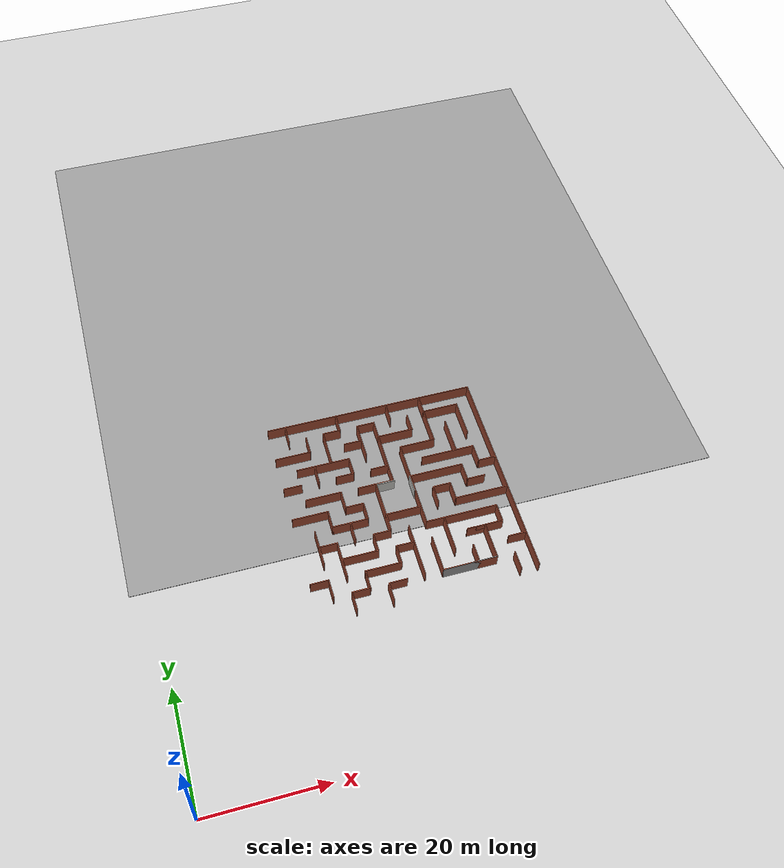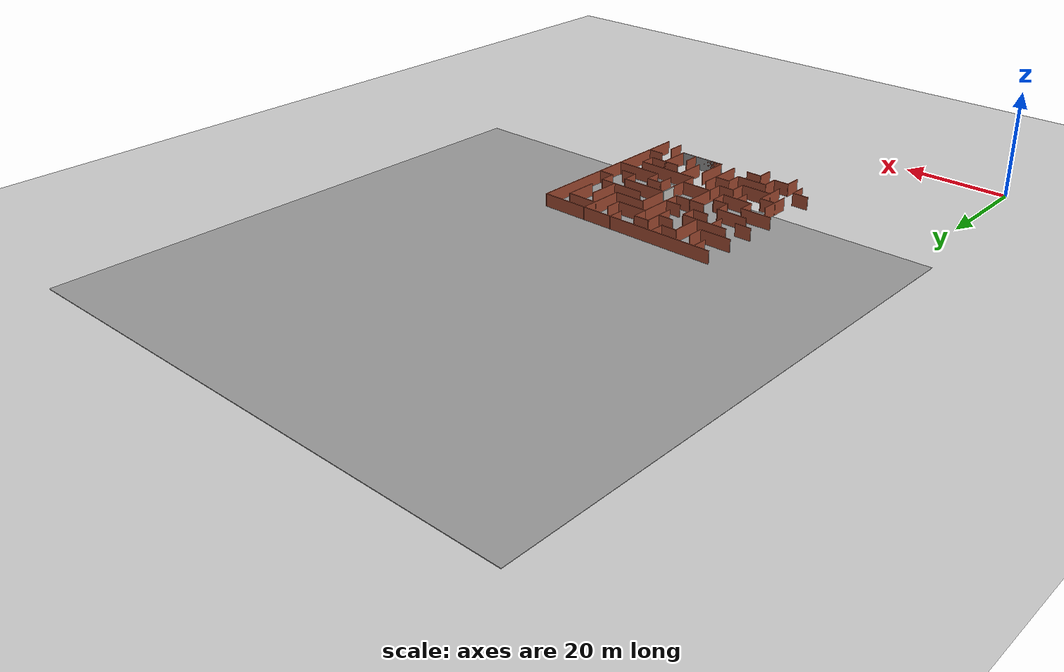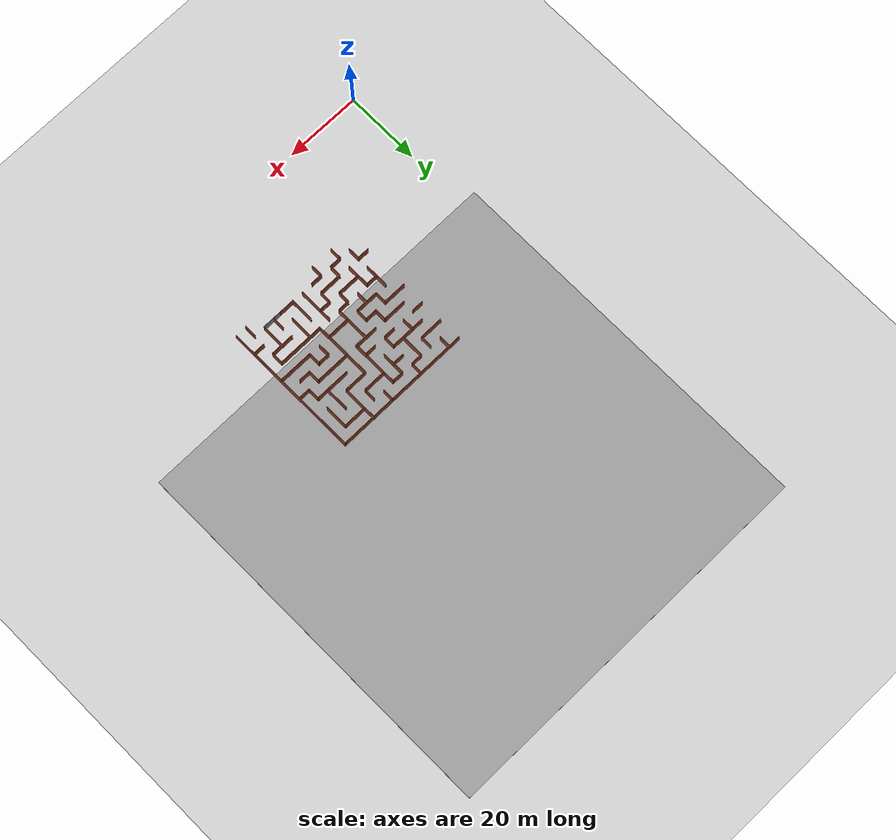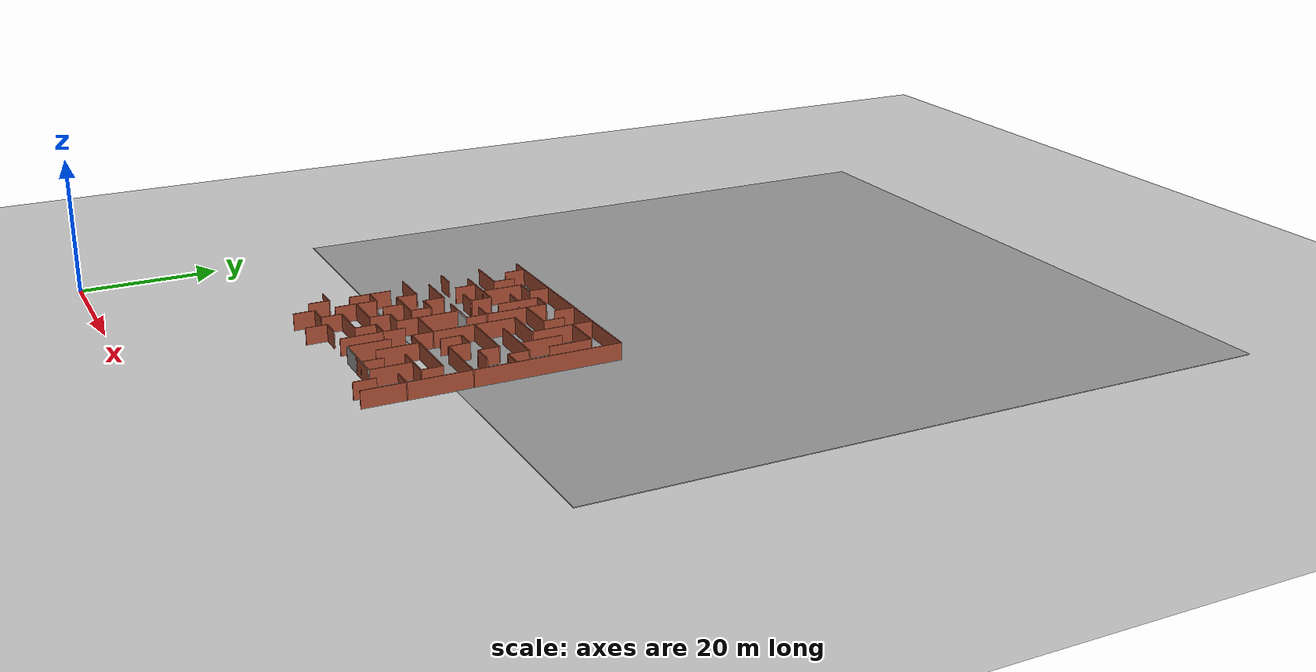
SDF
<sdf version="1.6">
 <world name="default">
  <model name="ground_plane">
   <static>1</static>
   <link name="link">
    <collision name="collision">
     <geometry><plane><normal>0 0 1</normal><size>100 100</size></plane></geometry>
     <surface><friction><ode><mu>100</mu><mu2>50</mu2></ode></friction></surface>
    </collision>
    <visual name="visual">
     <cast_shadows>0</cast_shadows>
     <geometry><plane><normal>0 0 1</normal><size>100 100</size></plane></geometry>
     <material>
      <script><uri>file://media/materials/scripts/gazebo.material</uri><name>Gazebo/Grey</name></script>
     </material>
    </visual>
   </link>
  </model>
  <model name="maze_final_2_0">
   <pose>42 42 0 0 -0 0</pose>
   <link name="Wall_10">
    <collision name="Wall_10_Collision">
     <geometry><box><size>3.15 0.15 2.5</size></box></geometry>
     <pose>0 0 1.25 0 -0 0</pose>
    </collision>
    <visual name="Wall_10_Visual">
     <pose>0 0 1.25 0 -0 0</pose>
     <geometry><box><size>3.15 0.15 2.5</size></box></geometry>
     <material>
      <script><uri>file://media/materials/scripts/gazebo.material</uri><name>Gazebo/Bricks</name></script>
      <ambient>1 1 1 1</ambient>
     </material>
    </visual>
    <pose>-16.5 -12 0 0 -0 0</pose>
   </link>
   <link name="Wall_100">
    <collision name="Wall_100_Collision">
     <geometry><box><size>3.15 0.15 2.5</size></box></geometry>
     <pose>0 0 1.25 0 -0 0</pose>
    </collision>
    <visual name="Wall_100_Visual">
     <pose>0 0 1.25 0 -0 0</pose>
     <geometry><box><size>3.15 0.15 2.5</size></box></geometry>
     <material>
      <script><uri>file://media/materials/scripts/gazebo.material</uri><name>Gazebo/Bricks</name></script>
      <ambient>1 1 1 1</ambient>
     </material>
    </visual>
    <pose>-4.5 12 0 0 -0 3.14159</pose>
   </link>
   <link name="Wall_102">
    <collision name="Wall_102_Collision">
     <geometry><box><size>9.15 0.15 2.5</size></box></geometry>
     <pose>0 0 1.25 0 -0 0</pose>
    </collision>
    <visual name="Wall_102_Visual">
     <pose>0 0 1.25 0 -0 0</pose>
     <geometry><box><size>9.15 0.15 2.5</size></box></geometry>
     <material>
      <script><uri>file://media/materials/scripts/gazebo.material</uri><name>Gazebo/Bricks</name></script>
      <ambient>1 1 1 1</ambient>
     </material>
    </visual>
    <pose>-0.0065 7.5 0 0 0 -1.57224</pose>
   </link>
   <link name="Wall_103">
    <collision name="Wall_103_Collision">
     <geometry><box><size>6.137 0.15 2.5</size></box></geometry>
     <pose>0 0 1.25 0 -0 0</pose>
    </collision>
    <visual name="Wall_103_Visual">
     <pose>0 0 1.25 0 -0 0</pose>
     <geometry><box><size>6.137 0.15 2.5</size></box></geometry>
     <material>
      <script><uri>file://media/materials/scripts/gazebo.material</uri><name>Gazebo/Bricks</name></script>
      <ambient>1 1 1 1</ambient>
     </material>
    </visual>
    <pose>-3.0065 3 0 0 -0 3.14159</pose>
   </link>
   <link name="Wall_105">
    <collision name="Wall_105_Collision">
     <geometry><box><size>3.15 0.15 2.5</size></box></geometry>
     <pose>0 0 1.25 0 -0 0</pose>
    </collision>
    <visual name="Wall_105_Visual">
     <pose>0 0 1.25 0 -0 0</pose>
     <geometry><box><size>3.15 0.15 2.5</size></box></geometry>
     <material>
      <script><uri>file://media/materials/scripts/gazebo.material</uri><name>Gazebo/Bricks</name></script>
      <ambient>1 1 1 1</ambient>
     </material>
    </visual>
    <pose>-1.5 6 0 0 -0 3.14159</pose>
   </link>
   <link name="Wall_108">
    <collision name="Wall_108_Collision">
     <geometry><box><size>6.15 0.15 2.5</size></box></geometry>
     <pose>0 0 1.25 0 -0 0</pose>
    </collision>
    <visual name="Wall_108_Visual">
     <pose>0 0 1.25 0 -0 0</pose>
     <geometry><box><size>6.15 0.15 2.5</size></box></geometry>
     <material>
      <script><uri>file://media/materials/scripts/gazebo.material</uri><name>Gazebo/Bricks</name></script>
      <ambient>1 1 1 1</ambient>
     </material>
    </visual>
    <pose>1e-06 -3 0 0 -0 3.14159</pose>
   </link>
   <link name="Wall_110">
    <collision name="Wall_110_Collision">
     <geometry><box><size>9.15 0.15 2.5</size></box></geometry>
     <pose>0 0 1.25 0 -0 0</pose>
    </collision>
    <visual name="Wall_110_Visual">
     <pose>0 0 1.25 0 -0 0</pose>
     <geometry><box><size>9.15 0.15 2.5</size></box></geometry>
     <material>
      <script><uri>file://media/materials/scripts/gazebo.material</uri><name>Gazebo/Bricks</name></script>
      <ambient>1 1 1 1</ambient>
     </material>
    </visual>
    <pose>-3 -1.5 0 0 -0 1.5708</pose>
   </link>
   <link name="Wall_112">
    <collision name="Wall_112_Collision">
     <geometry><box><size>3.15 0.15 2.5</size></box></geometry>
     <pose>0 0 1.25 0 -0 0</pose>
    </collision>
    <visual name="Wall_112_Visual">
     <pose>0 0 1.25 0 -0 0</pose>
     <geometry><box><size>3.15 0.15 2.5</size></box></geometry>
     <material>
      <script><uri>file://media/materials/scripts/gazebo.material</uri><name>Gazebo/Bricks</name></script>
      <ambient>1 1 1 1</ambient>
     </material>
    </visual>
    <pose>-4.5 -6 0 0 -0 3.14159</pose>
   </link>
   <link name="Wall_113">
    <collision name="Wall_113_Collision">
     <geometry><box><size>3.15 0.15 2.5</size></box></geometry>
     <pose>0 0 1.25 0 -0 0</pose>
    </collision>
    <visual name="Wall_113_Visual">
     <pose>0 0 1.25 0 -0 0</pose>
     <geometry><box><size>3.15 0.15 2.5</size></box></geometry>
     <material>
      <script><uri>file://media/materials/scripts/gazebo.material</uri><name>Gazebo/Bricks</name></script>
      <ambient>1 1 1 1</ambient>
     </material>
    </visual>
    <pose>-6 -7.5 0 0 0 -1.5708</pose>
   </link>
   <link name="Wall_114">
    <collision name="Wall_114_Collision">
     <geometry><box><size>6.15 0.15 2.5</size></box></geometry>
     <pose>0 0 1.25 0 -0 0</pose>
    </collision>
    <visual name="Wall_114_Visual">
     <pose>0 0 1.25 0 -0 0</pose>
     <geometry><box><size>6.15 0.15 2.5</size></box></geometry>
     <material>
      <script><uri>file://media/materials/scripts/gazebo.material</uri><name>Gazebo/Bricks</name></script>
      <ambient>1 1 1 1</ambient>
     </material>
    </visual>
    <pose>-9 -9 0 0 -0 3.14159</pose>
   </link>
   <link name="Wall_116">
    <collision name="Wall_116_Collision">
     <geometry><box><size>6.15 0.15 2.5</size></box></geometry>
     <pose>0 0 1.25 0 -0 0</pose>
    </collision>
    <visual name="Wall_116_Visual">
     <pose>0 0 1.25 0 -0 0</pose>
     <geometry><box><size>6.15 0.15 2.5</size></box></geometry>
     <material>
      <script><uri>file://media/materials/scripts/gazebo.material</uri><name>Gazebo/Bricks</name></script>
      <ambient>1 1 1 1</ambient>
     </material>
    </visual>
    <pose>-12 -9 0 0 -0 1.5708</pose>
   </link>
   <link name="Wall_117">
    <collision name="Wall_117_Collision">
     <geometry><box><size>3.15 0.15 2.5</size></box></geometry>
     <pose>0 0 1.25 0 -0 0</pose>
    </collision>
    <visual name="Wall_117_Visual">
     <pose>0 0 1.25 0 -0 0</pose>
     <geometry><box><size>3.15 0.15 2.5</size></box></geometry>
     <material>
      <script><uri>file://media/materials/scripts/gazebo.material</uri><name>Gazebo/Bricks</name></script>
      <ambient>1 1 1 1</ambient>
     </material>
    </visual>
    <pose>-13.5 -6 0 0 -0 3.14159</pose>
   </link>
   <link name="Wall_119">
    <collision name="Wall_119_Collision">
     <geometry><box><size>6.15 0.15 2.5</size></box></geometry>
     <pose>0 0 1.25 0 -0 0</pose>
    </collision>
    <visual name="Wall_119_Visual">
     <pose>0 0 1.25 0 -0 0</pose>
     <geometry><box><size>6.15 0.15 2.5</size></box></geometry>
     <material>
      <script><uri>file://media/materials/scripts/gazebo.material</uri><name>Gazebo/Bricks</name></script>
      <ambient>1 1 1 1</ambient>
     </material>
    </visual>
    <pose>-15 -6 0 0 0 -1.5708</pose>
   </link>
   <link name="Wall_12">
    <collision name="Wall_12_Collision">
     <geometry><box><size>6.15 0.15 2.5</size></box></geometry>
     <pose>0 0 1.25 0 -0 0</pose>
    </collision>
    <visual name="Wall_12_Visual">
     <pose>0 0 1.25 0 -0 0</pose>
     <geometry><box><size>6.15 0.15 2.5</size></box></geometry>
     <material>
      <script><uri>file://media/materials/scripts/gazebo.material</uri><name>Gazebo/Bricks</name></script>
      <ambient>1 1 1 1</ambient>
     </material>
    </visual>
    <pose>-15 -1e-06 0 0 -0 0</pose>
   </link>
   <link name="Wall_121">
    <collision name="Wall_121_Collision">
     <geometry><box><size>3.13703 0.15 2.5</size></box></geometry>
     <pose>0 0 1.25 0 -0 0</pose>
    </collision>
    <visual name="Wall_121_Visual">
     <pose>0 0 1.25 0 -0 0</pose>
     <geometry><box><size>3.13703 0.15 2.5</size></box></geometry>
     <material>
      <script><uri>file://media/materials/scripts/gazebo.material</uri><name>Gazebo/Bricks</name></script>
      <ambient>1 1 1 1</ambient>
     </material>
    </visual>
    <pose>-12.0065 -1.4935 0 0 0 -1.57515</pose>
   </link>
   <link name="Wall_122">
    <collision name="Wall_122_Collision">
     <geometry><box><size>6.16301 0.15 2.5</size></box></geometry>
     <pose>0 0 1.25 0 -0 0</pose>
    </collision>
    <visual name="Wall_122_Visual">
     <pose>0 0 1.25 0 -0 0</pose>
     <geometry><box><size>6.16301 0.15 2.5</size></box></geometry>
     <material>
      <script><uri>file://media/materials/scripts/gazebo.material</uri><name>Gazebo/Bricks</name></script>
      <ambient>1 1 1 1</ambient>
     </material>
    </visual>
    <pose>-9.0065 -2.9935 0 0 0 -0.002162</pose>
   </link>
   <link name="Wall_123">
    <collision name="Wall_123_Collision">
     <geometry><box><size>3.15 0.15 2.5</size></box></geometry>
     <pose>0 0 1.25 0 -0 0</pose>
    </collision>
    <visual name="Wall_123_Visual">
     <pose>0 0 1.25 0 -0 0</pose>
     <geometry><box><size>3.15 0.15 2.5</size></box></geometry>
     <material>
      <script><uri>file://media/materials/scripts/gazebo.material</uri><name>Gazebo/Bricks</name></script>
      <ambient>1 1 1 1</ambient>
     </material>
    </visual>
    <pose>-6 -1.5 0 0 -0 1.5708</pose>
   </link>
   <link name="Wall_124">
    <collision name="Wall_124_Collision">
     <geometry><box><size>3.15 0.15 2.5</size></box></geometry>
     <pose>0 0 1.25 0 -0 0</pose>
    </collision>
    <visual name="Wall_124_Visual">
     <pose>0 0 1.25 0 -0 0</pose>
     <geometry><box><size>3.15 0.15 2.5</size></box></geometry>
     <material>
      <script><uri>file://media/materials/scripts/gazebo.material</uri><name>Gazebo/Bricks</name></script>
      <ambient>1 1 1 1</ambient>
     </material>
    </visual>
    <pose>-7.5 -1e-06 0 0 -0 3.14159</pose>
   </link>
   <link name="Wall_125">
    <collision name="Wall_125_Collision">
     <geometry><box><size>3.15 0.15 2.5</size></box></geometry>
     <pose>0 0 1.25 0 -0 0</pose>
    </collision>
    <visual name="Wall_125_Visual">
     <pose>0 0 1.25 0 -0 0</pose>
     <geometry><box><size>3.15 0.15 2.5</size></box></geometry>
     <material>
      <script><uri>file://media/materials/scripts/gazebo.material</uri><name>Gazebo/Bricks</name></script>
      <ambient>1 1 1 1</ambient>
     </material>
    </visual>
    <pose>-9 1.5 0 0 -0 1.5708</pose>
   </link>
   <link name="Wall_127">
    <collision name="Wall_127_Collision">
     <geometry><box><size>6.15 0.15 2.5</size></box></geometry>
     <pose>0 0 1.25 0 -0 0</pose>
    </collision>
    <visual name="Wall_127_Visual">
     <pose>0 0 1.25 0 -0 0</pose>
     <geometry><box><size>6.15 0.15 2.5</size></box></geometry>
     <material>
      <script><uri>file://media/materials/scripts/gazebo.material</uri><name>Gazebo/Bricks</name></script>
      <ambient>1 1 1 1</ambient>
     </material>
    </visual>
    <pose>-12 3 0 0 -0 3.14159</pose>
   </link>
   <link name="Wall_129">
    <collision name="Wall_129_Collision">
     <geometry><box><size>3.15 0.15 2.5</size></box></geometry>
     <pose>0 0 1.25 0 -0 0</pose>
    </collision>
    <visual name="Wall_129_Visual">
     <pose>0 0 1.25 0 -0 0</pose>
     <geometry><box><size>3.15 0.15 2.5</size></box></geometry>
     <material>
      <script><uri>file://media/materials/scripts/gazebo.material</uri><name>Gazebo/Bricks</name></script>
      <ambient>1 1 1 1</ambient>
     </material>
    </visual>
    <pose>-9 -4.5 0 0 0 -1.5708</pose>
   </link>
   <link name="Wall_131">
    <collision name="Wall_131_Collision">
     <geometry><box><size>3.15 0.15 2.5</size></box></geometry>
     <pose>0 0 1.25 0 -0 0</pose>
    </collision>
    <visual name="Wall_131_Visual">
     <pose>0 0 1.25 0 -0 0</pose>
     <geometry><box><size>3.15 0.15 2.5</size></box></geometry>
     <material>
      <script><uri>file://media/materials/scripts/gazebo.material</uri><name>Gazebo/Bricks</name></script>
      <ambient>1 1 1 1</ambient>
     </material>
    </visual>
    <pose>-6 16.5 0 0 0 -1.5708</pose>
   </link>
   <link name="Wall_132">
    <collision name="Wall_132_Collision">
     <geometry><box><size>3.15 0.15 2.5</size></box></geometry>
     <pose>0 0 1.25 0 -0 0</pose>
    </collision>
    <visual name="Wall_132_Visual">
     <pose>0 0 1.25 0 -0 0</pose>
     <geometry><box><size>3.15 0.15 2.5</size></box></geometry>
     <material>
      <script><uri>file://media/materials/scripts/gazebo.material</uri><name>Gazebo/Bricks</name></script>
      <ambient>1 1 1 1</ambient>
     </material>
    </visual>
    <pose>-7.5 15 0 0 -0 3.14159</pose>
   </link>
   <link name="Wall_133">
    <collision name="Wall_133_Collision">
     <geometry><box><size>6.15 0.15 2.5</size></box></geometry>
     <pose>0 0 1.25 0 -0 0</pose>
    </collision>
    <visual name="Wall_133_Visual">
     <pose>0 0 1.25 0 -0 0</pose>
     <geometry><box><size>6.15 0.15 2.5</size></box></geometry>
     <material>
      <script><uri>file://media/materials/scripts/gazebo.material</uri><name>Gazebo/Bricks</name></script>
      <ambient>1 1 1 1</ambient>
     </material>
    </visual>
    <pose>-9 12 0 0 0 -1.5708</pose>
   </link>
   <link name="Wall_135">
    <collision name="Wall_135_Collision">
     <geometry><box><size>3.15 0.15 2.5</size></box></geometry>
     <pose>0 0 1.25 0 -0 0</pose>
    </collision>
    <visual name="Wall_135_Visual">
     <pose>0 0 1.25 0 -0 0</pose>
     <geometry><box><size>3.15 0.15 2.5</size></box></geometry>
     <material>
      <script><uri>file://media/materials/scripts/gazebo.material</uri><name>Gazebo/Bricks</name></script>
      <ambient>1 1 1 1</ambient>
     </material>
    </visual>
    <pose>-7.5 6 0 0 -0 0</pose>
   </link>
   <link name="Wall_136">
    <collision name="Wall_136_Collision">
     <geometry><box><size>3.15 0.15 2.5</size></box></geometry>
     <pose>0 0 1.25 0 -0 0</pose>
    </collision>
    <visual name="Wall_136_Visual">
     <pose>0 0 1.25 0 -0 0</pose>
     <geometry><box><size>3.15 0.15 2.5</size></box></geometry>
     <material>
      <script><uri>file://media/materials/scripts/gazebo.material</uri><name>Gazebo/Bricks</name></script>
      <ambient>1 1 1 1</ambient>
     </material>
    </visual>
    <pose>-6 7.5 0 0 -0 1.5708</pose>
   </link>
   <link name="Wall_137">
    <collision name="Wall_137_Collision">
     <geometry><box><size>9.15 0.15 2.5</size></box></geometry>
     <pose>0 0 1.25 0 -0 0</pose>
    </collision>
    <visual name="Wall_137_Visual">
     <pose>0 0 1.25 0 -0 0</pose>
     <geometry><box><size>9.15 0.15 2.5</size></box></geometry>
     <material>
      <script><uri>file://media/materials/scripts/gazebo.material</uri><name>Gazebo/Bricks</name></script>
      <ambient>1 1 1 1</ambient>
     </material>
    </visual>
    <pose>-10.5 9 0 0 -0 3.14159</pose>
   </link>
   <link name="Wall_139">
    <collision name="Wall_139_Collision">
     <geometry><box><size>3.15 0.15 2.5</size></box></geometry>
     <pose>0 0 1.25 0 -0 0</pose>
    </collision>
    <visual name="Wall_139_Visual">
     <pose>0 0 1.25 0 -0 0</pose>
     <geometry><box><size>3.15 0.15 2.5</size></box></geometry>
     <material>
      <script><uri>file://media/materials/scripts/gazebo.material</uri><name>Gazebo/Bricks</name></script>
      <ambient>1 1 1 1</ambient>
     </material>
    </visual>
    <pose>-12 7.5 0 0 0 -1.5708</pose>
   </link>
   <link name="Wall_14">
    <collision name="Wall_14_Collision">
     <geometry><box><size>3.15 0.15 2.5</size></box></geometry>
     <pose>0 0 1.25 0 -0 0</pose>
    </collision>
    <visual name="Wall_14_Visual">
     <pose>0 0 1.25 0 -0 0</pose>
     <geometry><box><size>3.15 0.15 2.5</size></box></geometry>
     <material>
      <script><uri>file://media/materials/scripts/gazebo.material</uri><name>Gazebo/Bricks</name></script>
      <ambient>1 1 1 1</ambient>
     </material>
    </visual>
    <pose>-16.5 6 0 0 -0 0</pose>
   </link>
   <link name="Wall_141">
    <collision name="Wall_141_Collision">
     <geometry><box><size>3.15 0.15 2.5</size></box></geometry>
     <pose>0 0 1.25 0 -0 0</pose>
    </collision>
    <visual name="Wall_141_Visual">
     <pose>0 0 1.25 0 -0 0</pose>
     <geometry><box><size>3.15 0.15 2.5</size></box></geometry>
     <material>
      <script><uri>file://media/materials/scripts/gazebo.material</uri><name>Gazebo/Bricks</name></script>
      <ambient>1 1 1 1</ambient>
     </material>
    </visual>
    <pose>-15 16.5 0 0 -0 1.5708</pose>
   </link>
   <link name="Wall_143">
    <collision name="Wall_143_Collision">
     <geometry><box><size>3.15 0.15 2.5</size></box></geometry>
     <pose>0 0 1.25 0 -0 0</pose>
    </collision>
    <visual name="Wall_143_Visual">
     <pose>0 0 1.25 0 -0 0</pose>
     <geometry><box><size>3.15 0.15 2.5</size></box></geometry>
     <material>
      <script><uri>file://media/materials/scripts/gazebo.material</uri><name>Gazebo/Bricks</name></script>
      <ambient>1 1 1 1</ambient>
     </material>
    </visual>
    <pose>-12 13.5 0 0 -0 1.5708</pose>
   </link>
   <link name="Wall_16">
    <collision name="Wall_16_Collision">
     <geometry><box><size>6.15 0.15 2.5</size></box></geometry>
     <pose>0 0 1.25 0 -0 0</pose>
    </collision>
    <visual name="Wall_16_Visual">
     <pose>0 0 1.25 0 -0 0</pose>
     <geometry><box><size>6.15 0.15 2.5</size></box></geometry>
     <material>
      <script><uri>file://media/materials/scripts/gazebo.material</uri><name>Gazebo/Bricks</name></script>
      <ambient>1 1 1 1</ambient>
     </material>
    </visual>
    <pose>-15 12 0 0 -0 0</pose>
   </link>
   <link name="Wall_18">
    <collision name="Wall_18_Collision">
     <geometry><box><size>3.15 0.15 2.5</size></box></geometry>
     <pose>0 0 1.25 0 -0 0</pose>
    </collision>
    <visual name="Wall_18_Visual">
     <pose>0 0 1.25 0 -0 0</pose>
     <geometry><box><size>3.15 0.15 2.5</size></box></geometry>
     <material>
      <script><uri>file://media/materials/scripts/gazebo.material</uri><name>Gazebo/Bricks</name></script>
      <ambient>1 1 1 1</ambient>
     </material>
    </visual>
    <pose>-12 -16.5 0 0 -0 1.5708</pose>
   </link>
   <link name="Wall_20">
    <collision name="Wall_20_Collision">
     <geometry><box><size>3.15 0.15 2.5</size></box></geometry>
     <pose>0 0 1.25 0 -0 0</pose>
    </collision>
    <visual name="Wall_20_Visual">
     <pose>0 0 1.25 0 -0 0</pose>
     <geometry><box><size>3.15 0.15 2.5</size></box></geometry>
     <material>
      <script><uri>file://media/materials/scripts/gazebo.material</uri><name>Gazebo/Bricks</name></script>
      <ambient>1 1 1 1</ambient>
     </material>
    </visual>
    <pose>-10.5 -15 0 0 -0 0</pose>
   </link>
   <link name="Wall_22">
    <collision name="Wall_22_Collision">
     <geometry><box><size>6.15 0.15 2.5</size></box></geometry>
     <pose>0 0 1.25 0 -0 0</pose>
    </collision>
    <visual name="Wall_22_Visual">
     <pose>0 0 1.25 0 -0 0</pose>
     <geometry><box><size>6.15 0.15 2.5</size></box></geometry>
     <material>
      <script><uri>file://media/materials/scripts/gazebo.material</uri><name>Gazebo/Bricks</name></script>
      <ambient>1 1 1 1</ambient>
     </material>
    </visual>
    <pose>-6 -12 0 0 -0 0</pose>
   </link>
   <link name="Wall_24">
    <collision name="Wall_24_Collision">
     <geometry><box><size>3.15 0.15 2.5</size></box></geometry>
     <pose>0 0 1.25 0 -0 0</pose>
    </collision>
    <visual name="Wall_24_Visual">
     <pose>0 0 1.25 0 -0 0</pose>
     <geometry><box><size>3.15 0.15 2.5</size></box></geometry>
     <material>
      <script><uri>file://media/materials/scripts/gazebo.material</uri><name>Gazebo/Bricks</name></script>
      <ambient>1 1 1 1</ambient>
     </material>
    </visual>
    <pose>-9 -13.5 0 0 0 -1.5708</pose>
   </link>
   <link name="Wall_26">
    <collision name="Wall_26_Collision">
     <geometry><box><size>3.15 0.15 2.5</size></box></geometry>
     <pose>0 0 1.25 0 -0 0</pose>
    </collision>
    <visual name="Wall_26_Visual">
     <pose>0 0 1.25 0 -0 0</pose>
     <geometry><box><size>3.15 0.15 2.5</size></box></geometry>
     <material>
      <script><uri>file://media/materials/scripts/gazebo.material</uri><name>Gazebo/Bricks</name></script>
      <ambient>1 1 1 1</ambient>
     </material>
    </visual>
    <pose>-6 -16.5 0 0 -0 1.5708</pose>
   </link>
   <link name="Wall_28">
    <collision name="Wall_28_Collision">
     <geometry><box><size>3.15 0.15 2.5</size></box></geometry>
     <pose>0 0 1.25 0 -0 0</pose>
    </collision>
    <visual name="Wall_28_Visual">
     <pose>0 0 1.25 0 -0 0</pose>
     <geometry><box><size>3.15 0.15 2.5</size></box></geometry>
     <material>
      <script><uri>file://media/materials/scripts/gazebo.material</uri><name>Gazebo/Bricks</name></script>
      <ambient>1 1 1 1</ambient>
     </material>
    </visual>
    <pose>-4.5 -15 0 0 -0 0</pose>
   </link>
   <link name="Wall_32">
    <collision name="Wall_32_Collision">
     <geometry><box><size>9.15 0.15 2.5</size></box></geometry>
     <pose>0 0 1.25 0 -0 0</pose>
    </collision>
    <visual name="Wall_32_Visual">
     <pose>0 0 1.25 0 -0 0</pose>
     <geometry><box><size>9.15 0.15 2.5</size></box></geometry>
     <material>
      <script><uri>file://media/materials/scripts/gazebo.material</uri><name>Gazebo/Bricks</name></script>
      <ambient>1 1 1 1</ambient>
     </material>
    </visual>
    <pose>1e-06 -10.5 0 0 -0 1.5708</pose>
   </link>
   <link name="Wall_34">
    <collision name="Wall_34_Collision">
     <geometry><box><size>3.15 0.15 2.5</size></box></geometry>
     <pose>0 0 1.25 0 -0 0</pose>
    </collision>
    <visual name="Wall_34_Visual">
     <pose>0 0 1.25 0 -0 0</pose>
     <geometry><box><size>3.15 0.15 2.5</size></box></geometry>
     <material>
      <script><uri>file://media/materials/scripts/gazebo.material</uri><name>Gazebo/Bricks</name></script>
      <ambient>1 1 1 1</ambient>
     </material>
    </visual>
    <pose>-1.5 -9 0 0 -0 3.14159</pose>
   </link>
   <link name="Wall_36">
    <collision name="Wall_36_Collision">
     <geometry><box><size>3.15 0.15 2.5</size></box></geometry>
     <pose>0 0 1.25 0 -0 0</pose>
    </collision>
    <visual name="Wall_36_Visual">
     <pose>0 0 1.25 0 -0 0</pose>
     <geometry><box><size>3.15 0.15 2.5</size></box></geometry>
     <material>
      <script><uri>file://media/materials/scripts/gazebo.material</uri><name>Gazebo/Bricks</name></script>
      <ambient>1 1 1 1</ambient>
     </material>
    </visual>
    <pose>-3 -10.5 0 0 -0 1.5708</pose>
   </link>
   <link name="Wall_4">
    <collision name="Wall_4_Collision">
     <geometry><box><size>36.15 0.15 2.5</size></box></geometry>
     <pose>0 0 1.25 0 -0 0</pose>
    </collision>
    <visual name="Wall_4_Visual">
     <pose>0 0 1.25 0 -0 0</pose>
     <geometry><box><size>36.15 0.15 2.5</size></box></geometry>
     <material>
      <script><uri>file://media/materials/scripts/gazebo.material</uri><name>Gazebo/Bricks</name></script>
      <ambient>1 1 1 1</ambient>
     </material>
    </visual>
    <pose>18 -1e-06 0 0 0 -1.5708</pose>
   </link>
   <link name="Wall_40">
    <collision name="Wall_40_Collision">
     <geometry><box><size>9.15 0.15 2.5</size></box></geometry>
     <pose>0 0 1.25 0 -0 0</pose>
    </collision>
    <visual name="Wall_40_Visual">
     <pose>0 0 1.25 0 -0 0</pose>
     <geometry><box><size>9.15 0.15 2.5</size></box></geometry>
     <material>
      <script><uri>file://media/materials/scripts/gazebo.material</uri><name>Gazebo/Grey</name></script>
      <ambient>1 1 1 1</ambient>
     </material>
    </visual>
    <pose>7.5 -15 0 0 -0 0</pose>
   </link>
   <link name="Wall_43">
    <collision name="Wall_43_Collision">
     <geometry><box><size>9.15 0.15 2.5</size></box></geometry>
     <pose>0 0 1.25 0 -0 0</pose>
    </collision>
    <visual name="Wall_43_Visual">
     <pose>0 0 1.25 0 -0 0</pose>
     <geometry><box><size>9.15 0.15 2.5</size></box></geometry>
     <material>
      <script><uri>file://media/materials/scripts/gazebo.material</uri><name>Gazebo/Bricks</name></script>
      <ambient>1 1 1 1</ambient>
     </material>
    </visual>
    <pose>9 13.5 0 0 0 -1.5708</pose>
   </link>
   <link name="Wall_45">
    <collision name="Wall_45_Collision">
     <geometry><box><size>6.15 0.15 2.5</size></box></geometry>
     <pose>0 0 1.25 0 -0 0</pose>
    </collision>
    <visual name="Wall_45_Visual">
     <pose>0 0 1.25 0 -0 0</pose>
     <geometry><box><size>6.15 0.15 2.5</size></box></geometry>
     <material>
      <script><uri>file://media/materials/scripts/gazebo.material</uri><name>Gazebo/Bricks</name></script>
      <ambient>1 1 1 1</ambient>
     </material>
    </visual>
    <pose>6 9 0 0 -0 3.14159</pose>
   </link>
   <link name="Wall_47">
    <collision name="Wall_47_Collision">
     <geometry><box><size>15.15 0.15 2.5</size></box></geometry>
     <pose>0 0 1.25 0 -0 0</pose>
    </collision>
    <visual name="Wall_47_Visual">
     <pose>0 0 1.25 0 -0 0</pose>
     <geometry><box><size>15.15 0.15 2.5</size></box></geometry>
     <material>
      <script><uri>file://media/materials/scripts/gazebo.material</uri><name>Gazebo/Bricks</name></script>
      <ambient>1 1 1 1</ambient>
     </material>
    </visual>
    <pose>3 1.5 0 0 0 -1.5708</pose>
   </link>
   <link name="Wall_49">
    <collision name="Wall_49_Collision">
     <geometry><box><size>12.15 0.15 2.5</size></box></geometry>
     <pose>0 0 1.25 0 -0 0</pose>
    </collision>
    <visual name="Wall_49_Visual">
     <pose>0 0 1.25 0 -0 0</pose>
     <geometry><box><size>12.15 0.15 2.5</size></box></geometry>
     <material>
      <script><uri>file://media/materials/scripts/gazebo.material</uri><name>Gazebo/Bricks</name></script>
      <ambient>1 1 1 1</ambient>
     </material>
    </visual>
    <pose>9 -6 0 0 -0 0</pose>
   </link>
   <link name="Wall_51">
    <collision name="Wall_51_Collision">
     <geometry><box><size>3.15 0.15 2.5</size></box></geometry>
     <pose>0 0 1.25 0 -0 0</pose>
    </collision>
    <visual name="Wall_51_Visual">
     <pose>0 0 1.25 0 -0 0</pose>
     <geometry><box><size>3.15 0.15 2.5</size></box></geometry>
     <material>
      <script><uri>file://media/materials/scripts/gazebo.material</uri><name>Gazebo/Bricks</name></script>
      <ambient>1 1 1 1</ambient>
     </material>
    </visual>
    <pose>15 -7.5 0 0 0 -1.5708</pose>
   </link>
   <link name="Wall_53">
    <collision name="Wall_53_Collision">
     <geometry><box><size>6.15 0.15 2.5</size></box></geometry>
     <pose>0 0 1.25 0 -0 0</pose>
    </collision>
    <visual name="Wall_53_Visual">
     <pose>0 0 1.25 0 -0 0</pose>
     <geometry><box><size>6.15 0.15 2.5</size></box></geometry>
     <material>
      <script><uri>file://media/materials/scripts/gazebo.material</uri><name>Gazebo/Bricks</name></script>
      <ambient>1 1 1 1</ambient>
     </material>
    </visual>
    <pose>12 -9 0 0 -0 3.14159</pose>
   </link>
   <link name="Wall_55">
    <collision name="Wall_55_Collision">
     <geometry><box><size>6.15 0.15 2.5</size></box></geometry>
     <pose>0 0 1.25 0 -0 0</pose>
    </collision>
    <visual name="Wall_55_Visual">
     <pose>0 0 1.25 0 -0 0</pose>
     <geometry><box><size>6.15 0.15 2.5</size></box></geometry>
     <material>
      <script><uri>file://media/materials/scripts/gazebo.material</uri><name>Gazebo/Bricks</name></script>
      <ambient>1 1 1 1</ambient>
     </material>
    </visual>
    <pose>12 -12 0 0 0 -1.5708</pose>
   </link>
   <link name="Wall_57">
    <collision name="Wall_57_Collision">
     <geometry><box><size>9.15 0.15 2.5</size></box></geometry>
     <pose>0 0 1.25 0 -0 0</pose>
    </collision>
    <visual name="Wall_57_Visual">
     <pose>0 0 1.25 0 -0 0</pose>
     <geometry><box><size>9.15 0.15 2.5</size></box></geometry>
     <material>
      <script><uri>file://media/materials/scripts/gazebo.material</uri><name>Gazebo/Bricks</name></script>
      <ambient>1 1 1 1</ambient>
     </material>
    </visual>
    <pose>7.5 -15 0 0 -0 3.14159</pose>
   </link>
   <link name="Wall_59">
    <collision name="Wall_59_Collision">
     <geometry><box><size>3.15 0.15 2.5</size></box></geometry>
     <pose>0 0 1.25 0 -0 0</pose>
    </collision>
    <visual name="Wall_59_Visual">
     <pose>0 0 1.25 0 -0 0</pose>
     <geometry><box><size>3.15 0.15 2.5</size></box></geometry>
     <material>
      <script><uri>file://media/materials/scripts/gazebo.material</uri><name>Gazebo/Bricks</name></script>
      <ambient>1 1 1 1</ambient>
     </material>
    </visual>
    <pose>9 -13.5 0 0 -0 1.5708</pose>
   </link>
   <link name="Wall_6">
    <collision name="Wall_6_Collision">
     <geometry><box><size>36.15 0.15 2.5</size></box></geometry>
     <pose>0 0 1.25 0 -0 0</pose>
    </collision>
    <visual name="Wall_6_Visual">
     <pose>0 0 1.25 0 -0 0</pose>
     <geometry><box><size>36.15 0.15 2.5</size></box></geometry>
     <material>
      <script><uri>file://media/materials/scripts/gazebo.material</uri><name>Gazebo/Bricks</name></script>
      <ambient>1 1 1 1</ambient>
     </material>
    </visual>
    <pose>1e-06 18 0 0 -0 3.14159</pose>
   </link>
   <link name="Wall_62">
    <collision name="Wall_62_Collision">
     <geometry><box><size>3.15 0.15 2.5</size></box></geometry>
     <pose>0 0 1.25 0 -0 0</pose>
    </collision>
    <visual name="Wall_62_Visual">
     <pose>0 0 1.25 0 -0 0</pose>
     <geometry><box><size>3.15 0.15 2.5</size></box></geometry>
     <material>
      <script><uri>file://media/materials/scripts/gazebo.material</uri><name>Gazebo/Bricks</name></script>
      <ambient>1 1 1 1</ambient>
     </material>
    </visual>
    <pose>10.5 -9 0 0 -0 3.14159</pose>
   </link>
   <link name="Wall_64">
    <collision name="Wall_64_Collision">
     <geometry><box><size>6.15 0.15 2.5</size></box></geometry>
     <pose>0 0 1.25 0 -0 0</pose>
    </collision>
    <visual name="Wall_64_Visual">
     <pose>0 0 1.25 0 -0 0</pose>
     <geometry><box><size>6.15 0.15 2.5</size></box></geometry>
     <material>
      <script><uri>file://media/materials/scripts/gazebo.material</uri><name>Gazebo/Bricks</name></script>
      <ambient>1 1 1 1</ambient>
     </material>
    </visual>
    <pose>3 -12 0 0 -0 1.5708</pose>
   </link>
   <link name="Wall_66">
    <collision name="Wall_66_Collision">
     <geometry><box><size>6.15 0.15 2.5</size></box></geometry>
     <pose>0 0 1.25 0 -0 0</pose>
    </collision>
    <visual name="Wall_66_Visual">
     <pose>0 0 1.25 0 -0 0</pose>
     <geometry><box><size>6.15 0.15 2.5</size></box></geometry>
     <material>
      <script><uri>file://media/materials/scripts/gazebo.material</uri><name>Gazebo/Bricks</name></script>
      <ambient>1 1 1 1</ambient>
     </material>
    </visual>
    <pose>6 -9 0 0 -0 1.5708</pose>
   </link>
   <link name="Wall_68">
    <collision name="Wall_68_Collision">
     <geometry><box><size>3.15 0.15 2.5</size></box></geometry>
     <pose>0 0 1.25 0 -0 0</pose>
    </collision>
    <visual name="Wall_68_Visual">
     <pose>0 0 1.25 0 -0 0</pose>
     <geometry><box><size>3.15 0.15 2.5</size></box></geometry>
     <material>
      <script><uri>file://media/materials/scripts/gazebo.material</uri><name>Gazebo/Bricks</name></script>
      <ambient>1 1 1 1</ambient>
     </material>
    </visual>
    <pose>16.5 -12 0 0 -0 3.14159</pose>
   </link>
   <link name="Wall_70">
    <collision name="Wall_70_Collision">
     <geometry><box><size>3.15 0.15 2.5</size></box></geometry>
     <pose>0 0 1.25 0 -0 0</pose>
    </collision>
    <visual name="Wall_70_Visual">
     <pose>0 0 1.25 0 -0 0</pose>
     <geometry><box><size>3.15 0.15 2.5</size></box></geometry>
     <material>
      <script><uri>file://media/materials/scripts/gazebo.material</uri><name>Gazebo/Bricks</name></script>
      <ambient>1 1 1 1</ambient>
     </material>
    </visual>
    <pose>15 -16.5 0 0 -0 1.5708</pose>
   </link>
   <link name="Wall_72">
    <collision name="Wall_72_Collision">
     <geometry><box><size>9.15 0.15 2.5</size></box></geometry>
     <pose>0 0 1.25 0 -0 0</pose>
    </collision>
    <visual name="Wall_72_Visual">
     <pose>0 0 1.25 0 -0 0</pose>
     <geometry><box><size>9.15 0.15 2.5</size></box></geometry>
     <material>
      <script><uri>file://media/materials/scripts/gazebo.material</uri><name>Gazebo/Bricks</name></script>
      <ambient>1 1 1 1</ambient>
     </material>
    </visual>
    <pose>13.5 -3 0 0 -0 3.14159</pose>
   </link>
   <link name="Wall_74">
    <collision name="Wall_74_Collision">
     <geometry><box><size>3.15 0.15 2.5</size></box></geometry>
     <pose>0 0 1.25 0 -0 0</pose>
    </collision>
    <visual name="Wall_74_Visual">
     <pose>0 0 1.25 0 -0 0</pose>
     <geometry><box><size>3.15 0.15 2.5</size></box></geometry>
     <material>
      <script><uri>file://media/materials/scripts/gazebo.material</uri><name>Gazebo/Bricks</name></script>
      <ambient>1 1 1 1</ambient>
     </material>
    </visual>
    <pose>9 -1.5 0 0 -0 1.5708</pose>
   </link>
   <link name="Wall_76">
    <collision name="Wall_76_Collision">
     <geometry><box><size>3.15 0.15 2.5</size></box></geometry>
     <pose>0 0 1.25 0 -0 0</pose>
    </collision>
    <visual name="Wall_76_Visual">
     <pose>0 0 1.25 0 -0 0</pose>
     <geometry><box><size>3.15 0.15 2.5</size></box></geometry>
     <material>
      <script><uri>file://media/materials/scripts/gazebo.material</uri><name>Gazebo/Bricks</name></script>
      <ambient>1 1 1 1</ambient>
     </material>
    </visual>
    <pose>7.5 -1e-06 0 0 -0 3.14159</pose>
   </link>
   <link name="Wall_77">
    <collision name="Wall_77_Collision">
     <geometry><box><size>3.15 0.15 2.5</size></box></geometry>
     <pose>0 0 1.25 0 -0 0</pose>
    </collision>
    <visual name="Wall_77_Visual">
     <pose>0 0 1.25 0 -0 0</pose>
     <geometry><box><size>3.15 0.15 2.5</size></box></geometry>
     <material>
      <script><uri>file://media/materials/scripts/gazebo.material</uri><name>Gazebo/Bricks</name></script>
      <ambient>1 1 1 1</ambient>
     </material>
    </visual>
    <pose>6 -1.5 0 0 0 -1.5708</pose>
   </link>
   <link name="Wall_79">
    <collision name="Wall_79_Collision">
     <geometry><box><size>3.15 0.15 2.5</size></box></geometry>
     <pose>0 0 1.25 0 -0 0</pose>
    </collision>
    <visual name="Wall_79_Visual">
     <pose>0 0 1.25 0 -0 0</pose>
     <geometry><box><size>3.15 0.15 2.5</size></box></geometry>
     <material>
      <script><uri>file://media/materials/scripts/gazebo.material</uri><name>Gazebo/Bricks</name></script>
      <ambient>1 1 1 1</ambient>
     </material>
    </visual>
    <pose>13.5 -1e-06 0 0 -0 3.14159</pose>
   </link>
   <link name="Wall_8">
    <collision name="Wall_8_Collision">
     <geometry><box><size>3.15 0.15 2.5</size></box></geometry>
     <pose>0 0 1.25 0 -0 0</pose>
    </collision>
    <visual name="Wall_8_Visual">
     <pose>0 0 1.25 0 -0 0</pose>
     <geometry><box><size>3.15 0.15 2.5</size></box></geometry>
     <material>
      <script><uri>file://media/materials/scripts/gazebo.material</uri><name>Gazebo/Bricks</name></script>
      <ambient>1 1 1 1</ambient>
     </material>
    </visual>
    <pose>-15 -13.5 0 0 -0 1.5708</pose>
   </link>
   <link name="Wall_80">
    <collision name="Wall_80_Collision">
     <geometry><box><size>3.15 0.15 2.5</size></box></geometry>
     <pose>0 0 1.25 0 -0 0</pose>
    </collision>
    <visual name="Wall_80_Visual">
     <pose>0 0 1.25 0 -0 0</pose>
     <geometry><box><size>3.15 0.15 2.5</size></box></geometry>
     <material>
      <script><uri>file://media/materials/scripts/gazebo.material</uri><name>Gazebo/Bricks</name></script>
      <ambient>1 1 1 1</ambient>
     </material>
    </visual>
    <pose>12 1.5 0 0 -0 1.5708</pose>
   </link>
   <link name="Wall_81">
    <collision name="Wall_81_Collision">
     <geometry><box><size>9.15 0.15 2.5</size></box></geometry>
     <pose>0 0 1.25 0 -0 0</pose>
    </collision>
    <visual name="Wall_81_Visual">
     <pose>0 0 1.25 0 -0 0</pose>
     <geometry><box><size>9.15 0.15 2.5</size></box></geometry>
     <material>
      <script><uri>file://media/materials/scripts/gazebo.material</uri><name>Gazebo/Bricks</name></script>
      <ambient>1 1 1 1</ambient>
     </material>
    </visual>
    <pose>7.5 3 0 0 -0 3.14159</pose>
   </link>
   <link name="Wall_83">
    <collision name="Wall_83_Collision">
     <geometry><box><size>3.15 0.15 2.5</size></box></geometry>
     <pose>0 0 1.25 0 -0 0</pose>
    </collision>
    <visual name="Wall_83_Visual">
     <pose>0 0 1.25 0 -0 0</pose>
     <geometry><box><size>3.15 0.15 2.5</size></box></geometry>
     <material>
      <script><uri>file://media/materials/scripts/gazebo.material</uri><name>Gazebo/Bricks</name></script>
      <ambient>1 1 1 1</ambient>
     </material>
    </visual>
    <pose>16.5 3 0 0 -0 3.14159</pose>
   </link>
   <link name="Wall_84">
    <collision name="Wall_84_Collision">
     <geometry><box><size>3.15 0.15 2.5</size></box></geometry>
     <pose>0 0 1.25 0 -0 0</pose>
    </collision>
    <visual name="Wall_84_Visual">
     <pose>0 0 1.25 0 -0 0</pose>
     <geometry><box><size>3.15 0.15 2.5</size></box></geometry>
     <material>
      <script><uri>file://media/materials/scripts/gazebo.material</uri><name>Gazebo/Bricks</name></script>
      <ambient>1 1 1 1</ambient>
     </material>
    </visual>
    <pose>15 4.5 0 0 -0 1.5708</pose>
   </link>
   <link name="Wall_85">
    <collision name="Wall_85_Collision">
     <geometry><box><size>9.15 0.15 2.5</size></box></geometry>
     <pose>0 0 1.25 0 -0 0</pose>
    </collision>
    <visual name="Wall_85_Visual">
     <pose>0 0 1.25 0 -0 0</pose>
     <geometry><box><size>9.15 0.15 2.5</size></box></geometry>
     <material>
      <script><uri>file://media/materials/scripts/gazebo.material</uri><name>Gazebo/Bricks</name></script>
      <ambient>1 1 1 1</ambient>
     </material>
    </visual>
    <pose>10.5 6 0 0 -0 3.14159</pose>
   </link>
   <link name="Wall_87">
    <collision name="Wall_87_Collision">
     <geometry><box><size>6.15 0.15 2.5</size></box></geometry>
     <pose>0 0 1.25 0 -0 0</pose>
    </collision>
    <visual name="Wall_87_Visual">
     <pose>0 0 1.25 0 -0 0</pose>
     <geometry><box><size>6.15 0.15 2.5</size></box></geometry>
     <material>
      <script><uri>file://media/materials/scripts/gazebo.material</uri><name>Gazebo/Bricks</name></script>
      <ambient>1 1 1 1</ambient>
     </material>
    </visual>
    <pose>15 12 0 0 -0 1.5708</pose>
   </link>
   <link name="Wall_88">
    <collision name="Wall_88_Collision">
     <geometry><box><size>6.15 0.15 2.5</size></box></geometry>
     <pose>0 0 1.25 0 -0 0</pose>
    </collision>
    <visual name="Wall_88_Visual">
     <pose>0 0 1.25 0 -0 0</pose>
     <geometry><box><size>6.15 0.15 2.5</size></box></geometry>
     <material>
      <script><uri>file://media/materials/scripts/gazebo.material</uri><name>Gazebo/Bricks</name></script>
      <ambient>1 1 1 1</ambient>
     </material>
    </visual>
    <pose>12 15 0 0 -0 3.14159</pose>
   </link>
   <link name="Wall_90">
    <collision name="Wall_90_Collision">
     <geometry><box><size>6.15 0.15 2.5</size></box></geometry>
     <pose>0 0 1.25 0 -0 0</pose>
    </collision>
    <visual name="Wall_90_Visual">
     <pose>0 0 1.25 0 -0 0</pose>
     <geometry><box><size>6.15 0.15 2.5</size></box></geometry>
     <material>
      <script><uri>file://media/materials/scripts/gazebo.material</uri><name>Gazebo/Bricks</name></script>
      <ambient>1 1 1 1</ambient>
     </material>
    </visual>
    <pose>12 9 0 0 0 -1.5708</pose>
   </link>
   <link name="Wall_92">
    <collision name="Wall_92_Collision">
     <geometry><box><size>3.15 0.15 2.5</size></box></geometry>
     <pose>0 0 1.25 0 -0 0</pose>
    </collision>
    <visual name="Wall_92_Visual">
     <pose>0 0 1.25 0 -0 0</pose>
     <geometry><box><size>3.15 0.15 2.5</size></box></geometry>
     <material>
      <script><uri>file://media/materials/scripts/gazebo.material</uri><name>Gazebo/Bricks</name></script>
      <ambient>1 1 1 1</ambient>
     </material>
    </visual>
    <pose>3 16.5 0 0 -0 1.5708</pose>
   </link>
   <link name="Wall_94">
    <collision name="Wall_94_Collision">
     <geometry><box><size>3.15 0.15 2.5</size></box></geometry>
     <pose>0 0 1.25 0 -0 0</pose>
    </collision>
    <visual name="Wall_94_Visual">
     <pose>0 0 1.25 0 -0 0</pose>
     <geometry><box><size>3.15 0.15 2.5</size></box></geometry>
     <material>
      <script><uri>file://media/materials/scripts/gazebo.material</uri><name>Gazebo/Bricks</name></script>
      <ambient>1 1 1 1</ambient>
     </material>
    </visual>
    <pose>6 13.5 0 0 0 -1.5708</pose>
   </link>
   <link name="Wall_95">
    <collision name="Wall_95_Collision">
     <geometry><box><size>6.15 0.15 2.5</size></box></geometry>
     <pose>0 0 1.25 0 -0 0</pose>
    </collision>
    <visual name="Wall_95_Visual">
     <pose>0 0 1.25 0 -0 0</pose>
     <geometry><box><size>6.15 0.15 2.5</size></box></geometry>
     <material>
      <script><uri>file://media/materials/scripts/gazebo.material</uri><name>Gazebo/Bricks</name></script>
      <ambient>1 1 1 1</ambient>
     </material>
    </visual>
    <pose>3 12 0 0 -0 3.14159</pose>
   </link>
   <link name="Wall_96">
    <collision name="Wall_96_Collision">
     <geometry><box><size>3.15 0.15 2.5</size></box></geometry>
     <pose>0 0 1.25 0 -0 0</pose>
    </collision>
    <visual name="Wall_96_Visual">
     <pose>0 0 1.25 0 -0 0</pose>
     <geometry><box><size>3.15 0.15 2.5</size></box></geometry>
     <material>
      <script><uri>file://media/materials/scripts/gazebo.material</uri><name>Gazebo/Bricks</name></script>
      <ambient>1 1 1 1</ambient>
     </material>
    </visual>
    <pose>1e-06 13.5 0 0 -0 1.5708</pose>
   </link>
   <link name="Wall_97">
    <collision name="Wall_97_Collision">
     <geometry><box><size>3.15 0.15 2.5</size></box></geometry>
     <pose>0 0 1.25 0 -0 0</pose>
    </collision>
    <visual name="Wall_97_Visual">
     <pose>0 0 1.25 0 -0 0</pose>
     <geometry><box><size>3.15 0.15 2.5</size></box></geometry>
     <material>
      <script><uri>file://media/materials/scripts/gazebo.material</uri><name>Gazebo/Bricks</name></script>
      <ambient>1 1 1 1</ambient>
     </material>
    </visual>
    <pose>-1.5 15 0 0 -0 3.14159</pose>
   </link>
   <link name="Wall_98">
    <collision name="Wall_98_Collision">
     <geometry><box><size>6.15 0.15 2.5</size></box></geometry>
     <pose>0 0 1.25 0 -0 0</pose>
    </collision>
    <visual name="Wall_98_Visual">
     <pose>0 0 1.25 0 -0 0</pose>
     <geometry><box><size>6.15 0.15 2.5</size></box></geometry>
     <material>
      <script><uri>file://media/materials/scripts/gazebo.material</uri><name>Gazebo/Bricks</name></script>
      <ambient>1 1 1 1</ambient>
     </material>
    </visual>
    <pose>-3 12 0 0 0 -1.5708</pose>
   </link>
   <static>1</static>
  </model>
  <model name="ground_plane_1">
   <static>1</static>
   <link name="link">
    <collision name="collision">
     <geometry><plane><normal>0 0 1</normal><size>100 100</size></plane></geometry>
     <surface><friction><ode><mu>100</mu><mu2>50</mu2></ode></friction></surface>
    </collision>
    <visual name="visual">
     <cast_shadows>0</cast_shadows>
     <geometry><plane><normal>0 0 1</normal><size>100 100</size></plane></geometry>
     <material>
      <script><uri>file://media/materials/scripts/gazebo.material</uri><name>Gazebo/Grey</name></script>
     </material>
    </visual>
   </link>
   <pose>46 86.5842 0 0 -0 0</pose>
  </model>
  <model name="concrete_wall_clone_6">
   <pose>44.8581 43.6198 0 0 -0 0</pose>
   <link name="Wall_0">
    <collision name="Wall_0_Collision">
     <geometry><box><size>3 0.15 2.5</size></box></geometry>
     <pose>0 0 1.25 0 -0 0</pose>
    </collision>
    <visual name="Wall_0_Visual">
     <pose>0 0 1.25 0 -0 0</pose>
     <geometry><box><size>3 0.15 2.5</size></box></geometry>
     <material>
      <script><uri>file://media/materials/scripts/gazebo.material</uri><name>Gazebo/CeilingTiled</name></script>
      <ambient>1 1 1 1</ambient>
     </material>
     <meta><layer>0</layer></meta>
    </visual>
    <pose>0 0 0 0 -0 1.5708</pose>
   </link>
   <static>1</static>
  </model>
  <model name="concrete_wall_0_clone_6">
   <pose>40.6761 44.8536 0 0 -0 1.57079</pose>
   <link name="Wall_0">
    <collision name="Wall_0_Collision">
     <geometry><box><size>3 0.15 2.5</size></box></geometry>
     <pose>0 0 1.25 0 -0 0</pose>
    </collision>
    <visual name="Wall_0_Visual">
     <pose>0 0 1.25 0 -0 0</pose>
     <geometry><box><size>3 0.15 2.5</size></box></geometry>
     <material>
      <script><uri>file://media/materials/scripts/gazebo.material</uri><name>Gazebo/CeilingTiled</name></script>
      <ambient>1 1 1 1</ambient>
     </material>
     <meta><layer>0</layer></meta>
    </visual>
    <pose>0 0 0 0 -0 1.5708</pose>
   </link>
   <static>1</static>
  </model>
 </world>
</sdf>
